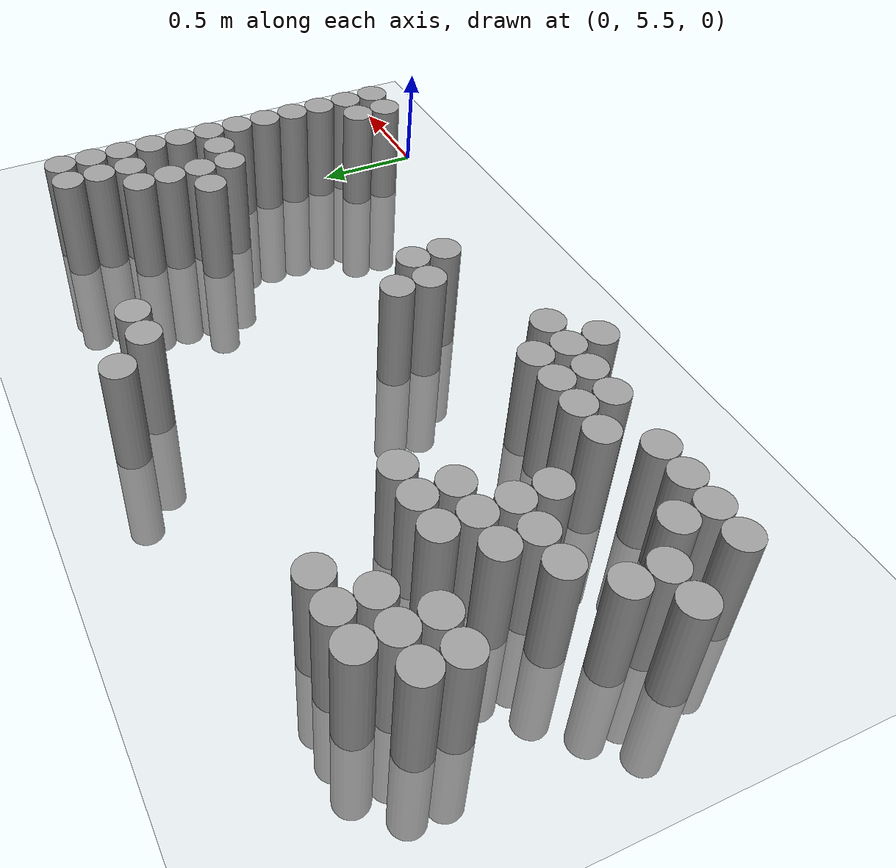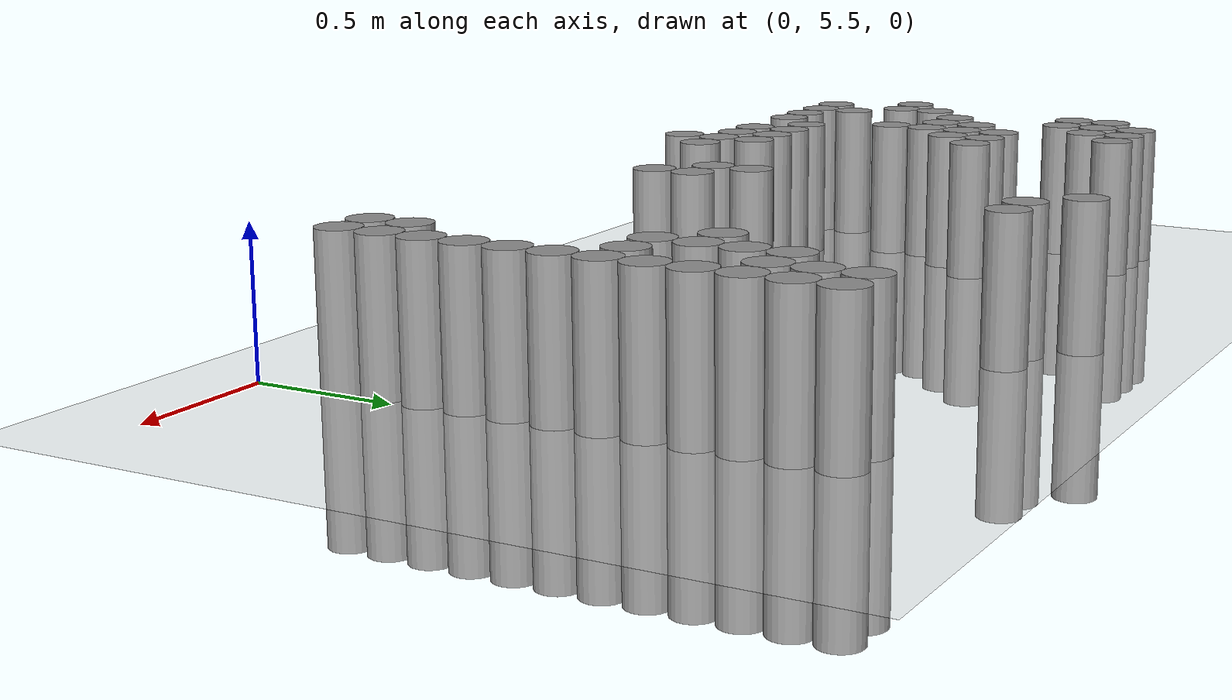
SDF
<sdf version="1.6">
 <world name="default">
  <model name="ground_plane">
   <static>1</static>
   <link name="link">
    <collision name="collision">
     <geometry><plane><normal>0 0 1</normal><size>100 100</size></plane></geometry>
     <surface><friction><ode><mu>100</mu><mu2>50</mu2></ode></friction></surface>
    </collision>
    <visual name="visual">
     <cast_shadows>0</cast_shadows>
     <geometry><plane><normal>0 0 1</normal><size>100 100</size></plane></geometry>
     <material>
      <script><uri>file://media/materials/scripts/gazebo.material</uri><name>Gazebo/Grey</name></script>
     </material>
    </visual>
   </link>
  </model>
  <model name="unit_cylinder_182">
   <pose>-3.375000 6.225000 0.000000 0.000000 0.000000 0.000000</pose>
   <link name="link">
    <inertial>
     <mass>1</mass>
     <inertia><ixx>0.145833</ixx><ixy>0</ixy><ixz>0</ixz><iyy>0.145833</iyy><iyz>0</iyz><izz>0.125</izz></inertia>
    </inertial>
    <collision name="collision">
     <geometry><cylinder><radius>0.075000</radius><length>1</length></cylinder></geometry>
    </collision>
    <visual name="visual">
     <geometry><cylinder><radius>0.075000</radius><length>1</length></cylinder></geometry>
     <material>
      <script><name>Gazebo/Grey</name><uri>file://media/materials/scripts/gazebo.material</uri></script>
     </material>
    </visual>
   </link>
  </model>
  <model name="unit_cylinder_190">
   <pose>-3.225000 5.925000 0.000000 0.000000 0.000000 0.000000</pose>
   <link name="link">
    <inertial>
     <mass>1</mass>
     <inertia><ixx>0.145833</ixx><ixy>0</ixy><ixz>0</ixz><iyy>0.145833</iyy><iyz>0</iyz><izz>0.125</izz></inertia>
    </inertial>
    <collision name="collision">
     <geometry><cylinder><radius>0.075000</radius><length>1</length></cylinder></geometry>
    </collision>
    <visual name="visual">
     <geometry><cylinder><radius>0.075000</radius><length>1</length></cylinder></geometry>
     <material>
      <script><name>Gazebo/Grey</name><uri>file://media/materials/scripts/gazebo.material</uri></script>
     </material>
    </visual>
   </link>
  </model>
  <model name="unit_cylinder_191">
   <pose>-3.225000 6.225000 0.000000 0.000000 0.000000 0.000000</pose>
   <link name="link">
    <inertial>
     <mass>1</mass>
     <inertia><ixx>0.145833</ixx><ixy>0</ixy><ixz>0</ixz><iyy>0.145833</iyy><iyz>0</iyz><izz>0.125</izz></inertia>
    </inertial>
    <collision name="collision">
     <geometry><cylinder><radius>0.075000</radius><length>1</length></cylinder></geometry>
    </collision>
    <visual name="visual">
     <geometry><cylinder><radius>0.075000</radius><length>1</length></cylinder></geometry>
     <material>
      <script><name>Gazebo/Grey</name><uri>file://media/materials/scripts/gazebo.material</uri></script>
     </material>
    </visual>
   </link>
  </model>
  <model name="unit_cylinder_192">
   <pose>-3.225000 6.375000 0.000000 0.000000 0.000000 0.000000</pose>
   <link name="link">
    <inertial>
     <mass>1</mass>
     <inertia><ixx>0.145833</ixx><ixy>0</ixy><ixz>0</ixz><iyy>0.145833</iyy><iyz>0</iyz><izz>0.125</izz></inertia>
    </inertial>
    <collision name="collision">
     <geometry><cylinder><radius>0.075000</radius><length>1</length></cylinder></geometry>
    </collision>
    <visual name="visual">
     <geometry><cylinder><radius>0.075000</radius><length>1</length></cylinder></geometry>
     <material>
      <script><name>Gazebo/Grey</name><uri>file://media/materials/scripts/gazebo.material</uri></script>
     </material>
    </visual>
   </link>
  </model>
  <model name="unit_cylinder_193">
   <pose>-3.225000 6.975000 0.000000 0.000000 0.000000 0.000000</pose>
   <link name="link">
    <inertial>
     <mass>1</mass>
     <inertia><ixx>0.145833</ixx><ixy>0</ixy><ixz>0</ixz><iyy>0.145833</iyy><iyz>0</iyz><izz>0.125</izz></inertia>
    </inertial>
    <collision name="collision">
     <geometry><cylinder><radius>0.075000</radius><length>1</length></cylinder></geometry>
    </collision>
    <visual name="visual">
     <geometry><cylinder><radius>0.075000</radius><length>1</length></cylinder></geometry>
     <material>
      <script><name>Gazebo/Grey</name><uri>file://media/materials/scripts/gazebo.material</uri></script>
     </material>
    </visual>
   </link>
  </model>
  <model name="unit_cylinder_194">
   <pose>-3.225000 7.125000 0.000000 0.000000 0.000000 0.000000</pose>
   <link name="link">
    <inertial>
     <mass>1</mass>
     <inertia><ixx>0.145833</ixx><ixy>0</ixy><ixz>0</ixz><iyy>0.145833</iyy><iyz>0</iyz><izz>0.125</izz></inertia>
    </inertial>
    <collision name="collision">
     <geometry><cylinder><radius>0.075000</radius><length>1</length></cylinder></geometry>
    </collision>
    <visual name="visual">
     <geometry><cylinder><radius>0.075000</radius><length>1</length></cylinder></geometry>
     <material>
      <script><name>Gazebo/Grey</name><uri>file://media/materials/scripts/gazebo.material</uri></script>
     </material>
    </visual>
   </link>
  </model>
  <model name="unit_cylinder_203">
   <pose>-3.075000 5.925000 0.000000 0.000000 0.000000 0.000000</pose>
   <link name="link">
    <inertial>
     <mass>1</mass>
     <inertia><ixx>0.145833</ixx><ixy>0</ixy><ixz>0</ixz><iyy>0.145833</iyy><iyz>0</iyz><izz>0.125</izz></inertia>
    </inertial>
    <collision name="collision">
     <geometry><cylinder><radius>0.075000</radius><length>1</length></cylinder></geometry>
    </collision>
    <visual name="visual">
     <geometry><cylinder><radius>0.075000</radius><length>1</length></cylinder></geometry>
     <material>
      <script><name>Gazebo/Grey</name><uri>file://media/materials/scripts/gazebo.material</uri></script>
     </material>
    </visual>
   </link>
  </model>
  <model name="unit_cylinder_204">
   <pose>-3.075000 6.075000 0.000000 0.000000 0.000000 0.000000</pose>
   <link name="link">
    <inertial>
     <mass>1</mass>
     <inertia><ixx>0.145833</ixx><ixy>0</ixy><ixz>0</ixz><iyy>0.145833</iyy><iyz>0</iyz><izz>0.125</izz></inertia>
    </inertial>
    <collision name="collision">
     <geometry><cylinder><radius>0.075000</radius><length>1</length></cylinder></geometry>
    </collision>
    <visual name="visual">
     <geometry><cylinder><radius>0.075000</radius><length>1</length></cylinder></geometry>
     <material>
      <script><name>Gazebo/Grey</name><uri>file://media/materials/scripts/gazebo.material</uri></script>
     </material>
    </visual>
   </link>
  </model>
  <model name="unit_cylinder_205">
   <pose>-3.075000 6.525000 0.000000 0.000000 0.000000 0.000000</pose>
   <link name="link">
    <inertial>
     <mass>1</mass>
     <inertia><ixx>0.145833</ixx><ixy>0</ixy><ixz>0</ixz><iyy>0.145833</iyy><iyz>0</iyz><izz>0.125</izz></inertia>
    </inertial>
    <collision name="collision">
     <geometry><cylinder><radius>0.075000</radius><length>1</length></cylinder></geometry>
    </collision>
    <visual name="visual">
     <geometry><cylinder><radius>0.075000</radius><length>1</length></cylinder></geometry>
     <material>
      <script><name>Gazebo/Grey</name><uri>file://media/materials/scripts/gazebo.material</uri></script>
     </material>
    </visual>
   </link>
  </model>
  <model name="unit_cylinder_206">
   <pose>-3.075000 6.975000 0.000000 0.000000 0.000000 0.000000</pose>
   <link name="link">
    <inertial>
     <mass>1</mass>
     <inertia><ixx>0.145833</ixx><ixy>0</ixy><ixz>0</ixz><iyy>0.145833</iyy><iyz>0</iyz><izz>0.125</izz></inertia>
    </inertial>
    <collision name="collision">
     <geometry><cylinder><radius>0.075000</radius><length>1</length></cylinder></geometry>
    </collision>
    <visual name="visual">
     <geometry><cylinder><radius>0.075000</radius><length>1</length></cylinder></geometry>
     <material>
      <script><name>Gazebo/Grey</name><uri>file://media/materials/scripts/gazebo.material</uri></script>
     </material>
    </visual>
   </link>
  </model>
  <model name="unit_cylinder_207">
   <pose>-3.075000 7.125000 0.000000 0.000000 0.000000 0.000000</pose>
   <link name="link">
    <inertial>
     <mass>1</mass>
     <inertia><ixx>0.145833</ixx><ixy>0</ixy><ixz>0</ixz><iyy>0.145833</iyy><iyz>0</iyz><izz>0.125</izz></inertia>
    </inertial>
    <collision name="collision">
     <geometry><cylinder><radius>0.075000</radius><length>1</length></cylinder></geometry>
    </collision>
    <visual name="visual">
     <geometry><cylinder><radius>0.075000</radius><length>1</length></cylinder></geometry>
     <material>
      <script><name>Gazebo/Grey</name><uri>file://media/materials/scripts/gazebo.material</uri></script>
     </material>
    </visual>
   </link>
  </model>
  <model name="unit_cylinder_208">
   <pose>-3.075000 7.275000 0.000000 0.000000 0.000000 0.000000</pose>
   <link name="link">
    <inertial>
     <mass>1</mass>
     <inertia><ixx>0.145833</ixx><ixy>0</ixy><ixz>0</ixz><iyy>0.145833</iyy><iyz>0</iyz><izz>0.125</izz></inertia>
    </inertial>
    <collision name="collision">
     <geometry><cylinder><radius>0.075000</radius><length>1</length></cylinder></geometry>
    </collision>
    <visual name="visual">
     <geometry><cylinder><radius>0.075000</radius><length>1</length></cylinder></geometry>
     <material>
      <script><name>Gazebo/Grey</name><uri>file://media/materials/scripts/gazebo.material</uri></script>
     </material>
    </visual>
   </link>
  </model>
  <model name="unit_cylinder_212">
   <pose>-2.925000 5.925000 0.000000 0.000000 0.000000 0.000000</pose>
   <link name="link">
    <inertial>
     <mass>1</mass>
     <inertia><ixx>0.145833</ixx><ixy>0</ixy><ixz>0</ixz><iyy>0.145833</iyy><iyz>0</iyz><izz>0.125</izz></inertia>
    </inertial>
    <collision name="collision">
     <geometry><cylinder><radius>0.075000</radius><length>1</length></cylinder></geometry>
    </collision>
    <visual name="visual">
     <geometry><cylinder><radius>0.075000</radius><length>1</length></cylinder></geometry>
     <material>
      <script><name>Gazebo/Grey</name><uri>file://media/materials/scripts/gazebo.material</uri></script>
     </material>
    </visual>
   </link>
  </model>
  <model name="unit_cylinder_213">
   <pose>-2.925000 6.525000 0.000000 0.000000 0.000000 0.000000</pose>
   <link name="link">
    <inertial>
     <mass>1</mass>
     <inertia><ixx>0.145833</ixx><ixy>0</ixy><ixz>0</ixz><iyy>0.145833</iyy><iyz>0</iyz><izz>0.125</izz></inertia>
    </inertial>
    <collision name="collision">
     <geometry><cylinder><radius>0.075000</radius><length>1</length></cylinder></geometry>
    </collision>
    <visual name="visual">
     <geometry><cylinder><radius>0.075000</radius><length>1</length></cylinder></geometry>
     <material>
      <script><name>Gazebo/Grey</name><uri>file://media/materials/scripts/gazebo.material</uri></script>
     </material>
    </visual>
   </link>
  </model>
  <model name="unit_cylinder_214">
   <pose>-2.925000 6.675000 0.000000 0.000000 0.000000 0.000000</pose>
   <link name="link">
    <inertial>
     <mass>1</mass>
     <inertia><ixx>0.145833</ixx><ixy>0</ixy><ixz>0</ixz><iyy>0.145833</iyy><iyz>0</iyz><izz>0.125</izz></inertia>
    </inertial>
    <collision name="collision">
     <geometry><cylinder><radius>0.075000</radius><length>1</length></cylinder></geometry>
    </collision>
    <visual name="visual">
     <geometry><cylinder><radius>0.075000</radius><length>1</length></cylinder></geometry>
     <material>
      <script><name>Gazebo/Grey</name><uri>file://media/materials/scripts/gazebo.material</uri></script>
     </material>
    </visual>
   </link>
  </model>
  <model name="unit_cylinder_215">
   <pose>-2.925000 7.125000 0.000000 0.000000 0.000000 0.000000</pose>
   <link name="link">
    <inertial>
     <mass>1</mass>
     <inertia><ixx>0.145833</ixx><ixy>0</ixy><ixz>0</ixz><iyy>0.145833</iyy><iyz>0</iyz><izz>0.125</izz></inertia>
    </inertial>
    <collision name="collision">
     <geometry><cylinder><radius>0.075000</radius><length>1</length></cylinder></geometry>
    </collision>
    <visual name="visual">
     <geometry><cylinder><radius>0.075000</radius><length>1</length></cylinder></geometry>
     <material>
      <script><name>Gazebo/Grey</name><uri>file://media/materials/scripts/gazebo.material</uri></script>
     </material>
    </visual>
   </link>
  </model>
  <model name="unit_cylinder_216">
   <pose>-2.925000 7.275000 0.000000 0.000000 0.000000 0.000000</pose>
   <link name="link">
    <inertial>
     <mass>1</mass>
     <inertia><ixx>0.145833</ixx><ixy>0</ixy><ixz>0</ixz><iyy>0.145833</iyy><iyz>0</iyz><izz>0.125</izz></inertia>
    </inertial>
    <collision name="collision">
     <geometry><cylinder><radius>0.075000</radius><length>1</length></cylinder></geometry>
    </collision>
    <visual name="visual">
     <geometry><cylinder><radius>0.075000</radius><length>1</length></cylinder></geometry>
     <material>
      <script><name>Gazebo/Grey</name><uri>file://media/materials/scripts/gazebo.material</uri></script>
     </material>
    </visual>
   </link>
  </model>
  <model name="unit_cylinder_218">
   <pose>-2.775000 5.925000 0.000000 0.000000 0.000000 0.000000</pose>
   <link name="link">
    <inertial>
     <mass>1</mass>
     <inertia><ixx>0.145833</ixx><ixy>0</ixy><ixz>0</ixz><iyy>0.145833</iyy><iyz>0</iyz><izz>0.125</izz></inertia>
    </inertial>
    <collision name="collision">
     <geometry><cylinder><radius>0.075000</radius><length>1</length></cylinder></geometry>
    </collision>
    <visual name="visual">
     <geometry><cylinder><radius>0.075000</radius><length>1</length></cylinder></geometry>
     <material>
      <script><name>Gazebo/Grey</name><uri>file://media/materials/scripts/gazebo.material</uri></script>
     </material>
    </visual>
   </link>
  </model>
  <model name="unit_cylinder_219">
   <pose>-2.775000 6.375000 0.000000 0.000000 0.000000 0.000000</pose>
   <link name="link">
    <inertial>
     <mass>1</mass>
     <inertia><ixx>0.145833</ixx><ixy>0</ixy><ixz>0</ixz><iyy>0.145833</iyy><iyz>0</iyz><izz>0.125</izz></inertia>
    </inertial>
    <collision name="collision">
     <geometry><cylinder><radius>0.075000</radius><length>1</length></cylinder></geometry>
    </collision>
    <visual name="visual">
     <geometry><cylinder><radius>0.075000</radius><length>1</length></cylinder></geometry>
     <material>
      <script><name>Gazebo/Grey</name><uri>file://media/materials/scripts/gazebo.material</uri></script>
     </material>
    </visual>
   </link>
  </model>
  <model name="unit_cylinder_220">
   <pose>-2.775000 6.525000 0.000000 0.000000 0.000000 0.000000</pose>
   <link name="link">
    <inertial>
     <mass>1</mass>
     <inertia><ixx>0.145833</ixx><ixy>0</ixy><ixz>0</ixz><iyy>0.145833</iyy><iyz>0</iyz><izz>0.125</izz></inertia>
    </inertial>
    <collision name="collision">
     <geometry><cylinder><radius>0.075000</radius><length>1</length></cylinder></geometry>
    </collision>
    <visual name="visual">
     <geometry><cylinder><radius>0.075000</radius><length>1</length></cylinder></geometry>
     <material>
      <script><name>Gazebo/Grey</name><uri>file://media/materials/scripts/gazebo.material</uri></script>
     </material>
    </visual>
   </link>
  </model>
  <model name="unit_cylinder_221">
   <pose>-2.775000 6.675000 0.000000 0.000000 0.000000 0.000000</pose>
   <link name="link">
    <inertial>
     <mass>1</mass>
     <inertia><ixx>0.145833</ixx><ixy>0</ixy><ixz>0</ixz><iyy>0.145833</iyy><iyz>0</iyz><izz>0.125</izz></inertia>
    </inertial>
    <collision name="collision">
     <geometry><cylinder><radius>0.075000</radius><length>1</length></cylinder></geometry>
    </collision>
    <visual name="visual">
     <geometry><cylinder><radius>0.075000</radius><length>1</length></cylinder></geometry>
     <material>
      <script><name>Gazebo/Grey</name><uri>file://media/materials/scripts/gazebo.material</uri></script>
     </material>
    </visual>
   </link>
  </model>
  <model name="unit_cylinder_222">
   <pose>-2.775000 6.825000 0.000000 0.000000 0.000000 0.000000</pose>
   <link name="link">
    <inertial>
     <mass>1</mass>
     <inertia><ixx>0.145833</ixx><ixy>0</ixy><ixz>0</ixz><iyy>0.145833</iyy><iyz>0</iyz><izz>0.125</izz></inertia>
    </inertial>
    <collision name="collision">
     <geometry><cylinder><radius>0.075000</radius><length>1</length></cylinder></geometry>
    </collision>
    <visual name="visual">
     <geometry><cylinder><radius>0.075000</radius><length>1</length></cylinder></geometry>
     <material>
      <script><name>Gazebo/Grey</name><uri>file://media/materials/scripts/gazebo.material</uri></script>
     </material>
    </visual>
   </link>
  </model>
  <model name="unit_cylinder_223">
   <pose>-2.775000 7.275000 0.000000 0.000000 0.000000 0.000000</pose>
   <link name="link">
    <inertial>
     <mass>1</mass>
     <inertia><ixx>0.145833</ixx><ixy>0</ixy><ixz>0</ixz><iyy>0.145833</iyy><iyz>0</iyz><izz>0.125</izz></inertia>
    </inertial>
    <collision name="collision">
     <geometry><cylinder><radius>0.075000</radius><length>1</length></cylinder></geometry>
    </collision>
    <visual name="visual">
     <geometry><cylinder><radius>0.075000</radius><length>1</length></cylinder></geometry>
     <material>
      <script><name>Gazebo/Grey</name><uri>file://media/materials/scripts/gazebo.material</uri></script>
     </material>
    </visual>
   </link>
  </model>
  <model name="unit_cylinder_225">
   <pose>-2.625000 6.075000 0.000000 0.000000 0.000000 0.000000</pose>
   <link name="link">
    <inertial>
     <mass>1</mass>
     <inertia><ixx>0.145833</ixx><ixy>0</ixy><ixz>0</ixz><iyy>0.145833</iyy><iyz>0</iyz><izz>0.125</izz></inertia>
    </inertial>
    <collision name="collision">
     <geometry><cylinder><radius>0.075000</radius><length>1</length></cylinder></geometry>
    </collision>
    <visual name="visual">
     <geometry><cylinder><radius>0.075000</radius><length>1</length></cylinder></geometry>
     <material>
      <script><name>Gazebo/Grey</name><uri>file://media/materials/scripts/gazebo.material</uri></script>
     </material>
    </visual>
   </link>
  </model>
  <model name="unit_cylinder_226">
   <pose>-2.625000 6.675000 0.000000 0.000000 0.000000 0.000000</pose>
   <link name="link">
    <inertial>
     <mass>1</mass>
     <inertia><ixx>0.145833</ixx><ixy>0</ixy><ixz>0</ixz><iyy>0.145833</iyy><iyz>0</iyz><izz>0.125</izz></inertia>
    </inertial>
    <collision name="collision">
     <geometry><cylinder><radius>0.075000</radius><length>1</length></cylinder></geometry>
    </collision>
    <visual name="visual">
     <geometry><cylinder><radius>0.075000</radius><length>1</length></cylinder></geometry>
     <material>
      <script><name>Gazebo/Grey</name><uri>file://media/materials/scripts/gazebo.material</uri></script>
     </material>
    </visual>
   </link>
  </model>
  <model name="unit_cylinder_227">
   <pose>-2.625000 6.825000 0.000000 0.000000 0.000000 0.000000</pose>
   <link name="link">
    <inertial>
     <mass>1</mass>
     <inertia><ixx>0.145833</ixx><ixy>0</ixy><ixz>0</ixz><iyy>0.145833</iyy><iyz>0</iyz><izz>0.125</izz></inertia>
    </inertial>
    <collision name="collision">
     <geometry><cylinder><radius>0.075000</radius><length>1</length></cylinder></geometry>
    </collision>
    <visual name="visual">
     <geometry><cylinder><radius>0.075000</radius><length>1</length></cylinder></geometry>
     <material>
      <script><name>Gazebo/Grey</name><uri>file://media/materials/scripts/gazebo.material</uri></script>
     </material>
    </visual>
   </link>
  </model>
  <model name="unit_cylinder_228">
   <pose>-2.475000 5.925000 0.000000 0.000000 0.000000 0.000000</pose>
   <link name="link">
    <inertial>
     <mass>1</mass>
     <inertia><ixx>0.145833</ixx><ixy>0</ixy><ixz>0</ixz><iyy>0.145833</iyy><iyz>0</iyz><izz>0.125</izz></inertia>
    </inertial>
    <collision name="collision">
     <geometry><cylinder><radius>0.075000</radius><length>1</length></cylinder></geometry>
    </collision>
    <visual name="visual">
     <geometry><cylinder><radius>0.075000</radius><length>1</length></cylinder></geometry>
     <material>
      <script><name>Gazebo/Grey</name><uri>file://media/materials/scripts/gazebo.material</uri></script>
     </material>
    </visual>
   </link>
  </model>
  <model name="unit_cylinder_229">
   <pose>-2.475000 6.075000 0.000000 0.000000 0.000000 0.000000</pose>
   <link name="link">
    <inertial>
     <mass>1</mass>
     <inertia><ixx>0.145833</ixx><ixy>0</ixy><ixz>0</ixz><iyy>0.145833</iyy><iyz>0</iyz><izz>0.125</izz></inertia>
    </inertial>
    <collision name="collision">
     <geometry><cylinder><radius>0.075000</radius><length>1</length></cylinder></geometry>
    </collision>
    <visual name="visual">
     <geometry><cylinder><radius>0.075000</radius><length>1</length></cylinder></geometry>
     <material>
      <script><name>Gazebo/Grey</name><uri>file://media/materials/scripts/gazebo.material</uri></script>
     </material>
    </visual>
   </link>
  </model>
  <model name="unit_cylinder_230">
   <pose>-2.475000 6.825000 0.000000 0.000000 0.000000 0.000000</pose>
   <link name="link">
    <inertial>
     <mass>1</mass>
     <inertia><ixx>0.145833</ixx><ixy>0</ixy><ixz>0</ixz><iyy>0.145833</iyy><iyz>0</iyz><izz>0.125</izz></inertia>
    </inertial>
    <collision name="collision">
     <geometry><cylinder><radius>0.075000</radius><length>1</length></cylinder></geometry>
    </collision>
    <visual name="visual">
     <geometry><cylinder><radius>0.075000</radius><length>1</length></cylinder></geometry>
     <material>
      <script><name>Gazebo/Grey</name><uri>file://media/materials/scripts/gazebo.material</uri></script>
     </material>
    </visual>
   </link>
  </model>
  <model name="unit_cylinder_233">
   <pose>-2.325000 5.925000 0.000000 0.000000 0.000000 0.000000</pose>
   <link name="link">
    <inertial>
     <mass>1</mass>
     <inertia><ixx>0.145833</ixx><ixy>0</ixy><ixz>0</ixz><iyy>0.145833</iyy><iyz>0</iyz><izz>0.125</izz></inertia>
    </inertial>
    <collision name="collision">
     <geometry><cylinder><radius>0.075000</radius><length>1</length></cylinder></geometry>
    </collision>
    <visual name="visual">
     <geometry><cylinder><radius>0.075000</radius><length>1</length></cylinder></geometry>
     <material>
      <script><name>Gazebo/Grey</name><uri>file://media/materials/scripts/gazebo.material</uri></script>
     </material>
    </visual>
   </link>
  </model>
  <model name="unit_cylinder_234">
   <pose>-2.325000 6.075000 0.000000 0.000000 0.000000 0.000000</pose>
   <link name="link">
    <inertial>
     <mass>1</mass>
     <inertia><ixx>0.145833</ixx><ixy>0</ixy><ixz>0</ixz><iyy>0.145833</iyy><iyz>0</iyz><izz>0.125</izz></inertia>
    </inertial>
    <collision name="collision">
     <geometry><cylinder><radius>0.075000</radius><length>1</length></cylinder></geometry>
    </collision>
    <visual name="visual">
     <geometry><cylinder><radius>0.075000</radius><length>1</length></cylinder></geometry>
     <material>
      <script><name>Gazebo/Grey</name><uri>file://media/materials/scripts/gazebo.material</uri></script>
     </material>
    </visual>
   </link>
  </model>
  <model name="unit_cylinder_238">
   <pose>-2.175000 5.775000 0.000000 0.000000 0.000000 0.000000</pose>
   <link name="link">
    <inertial>
     <mass>1</mass>
     <inertia><ixx>0.145833</ixx><ixy>0</ixy><ixz>0</ixz><iyy>0.145833</iyy><iyz>0</iyz><izz>0.125</izz></inertia>
    </inertial>
    <collision name="collision">
     <geometry><cylinder><radius>0.075000</radius><length>1</length></cylinder></geometry>
    </collision>
    <visual name="visual">
     <geometry><cylinder><radius>0.075000</radius><length>1</length></cylinder></geometry>
     <material>
      <script><name>Gazebo/Grey</name><uri>file://media/materials/scripts/gazebo.material</uri></script>
     </material>
    </visual>
   </link>
  </model>
  <model name="unit_cylinder_239">
   <pose>-2.175000 5.925000 0.000000 0.000000 0.000000 0.000000</pose>
   <link name="link">
    <inertial>
     <mass>1</mass>
     <inertia><ixx>0.145833</ixx><ixy>0</ixy><ixz>0</ixz><iyy>0.145833</iyy><iyz>0</iyz><izz>0.125</izz></inertia>
    </inertial>
    <collision name="collision">
     <geometry><cylinder><radius>0.075000</radius><length>1</length></cylinder></geometry>
    </collision>
    <visual name="visual">
     <geometry><cylinder><radius>0.075000</radius><length>1</length></cylinder></geometry>
     <material>
      <script><name>Gazebo/Grey</name><uri>file://media/materials/scripts/gazebo.material</uri></script>
     </material>
    </visual>
   </link>
  </model>
  <model name="unit_cylinder_240">
   <pose>-2.175000 6.075000 0.000000 0.000000 0.000000 0.000000</pose>
   <link name="link">
    <inertial>
     <mass>1</mass>
     <inertia><ixx>0.145833</ixx><ixy>0</ixy><ixz>0</ixz><iyy>0.145833</iyy><iyz>0</iyz><izz>0.125</izz></inertia>
    </inertial>
    <collision name="collision">
     <geometry><cylinder><radius>0.075000</radius><length>1</length></cylinder></geometry>
    </collision>
    <visual name="visual">
     <geometry><cylinder><radius>0.075000</radius><length>1</length></cylinder></geometry>
     <material>
      <script><name>Gazebo/Grey</name><uri>file://media/materials/scripts/gazebo.material</uri></script>
     </material>
    </visual>
   </link>
  </model>
  <model name="unit_cylinder_243">
   <pose>-2.025000 5.925000 0.000000 0.000000 0.000000 0.000000</pose>
   <link name="link">
    <inertial>
     <mass>1</mass>
     <inertia><ixx>0.145833</ixx><ixy>0</ixy><ixz>0</ixz><iyy>0.145833</iyy><iyz>0</iyz><izz>0.125</izz></inertia>
    </inertial>
    <collision name="collision">
     <geometry><cylinder><radius>0.075000</radius><length>1</length></cylinder></geometry>
    </collision>
    <visual name="visual">
     <geometry><cylinder><radius>0.075000</radius><length>1</length></cylinder></geometry>
     <material>
      <script><name>Gazebo/Grey</name><uri>file://media/materials/scripts/gazebo.material</uri></script>
     </material>
    </visual>
   </link>
  </model>
  <model name="unit_cylinder_245">
   <pose>-1.575000 6.225000 0.000000 0.000000 0.000000 0.000000</pose>
   <link name="link">
    <inertial>
     <mass>1</mass>
     <inertia><ixx>0.145833</ixx><ixy>0</ixy><ixz>0</ixz><iyy>0.145833</iyy><iyz>0</iyz><izz>0.125</izz></inertia>
    </inertial>
    <collision name="collision">
     <geometry><cylinder><radius>0.075000</radius><length>1</length></cylinder></geometry>
    </collision>
    <visual name="visual">
     <geometry><cylinder><radius>0.075000</radius><length>1</length></cylinder></geometry>
     <material>
      <script><name>Gazebo/Grey</name><uri>file://media/materials/scripts/gazebo.material</uri></script>
     </material>
    </visual>
   </link>
  </model>
  <model name="unit_cylinder_246">
   <pose>-1.575000 6.375000 0.000000 0.000000 0.000000 0.000000</pose>
   <link name="link">
    <inertial>
     <mass>1</mass>
     <inertia><ixx>0.145833</ixx><ixy>0</ixy><ixz>0</ixz><iyy>0.145833</iyy><iyz>0</iyz><izz>0.125</izz></inertia>
    </inertial>
    <collision name="collision">
     <geometry><cylinder><radius>0.075000</radius><length>1</length></cylinder></geometry>
    </collision>
    <visual name="visual">
     <geometry><cylinder><radius>0.075000</radius><length>1</length></cylinder></geometry>
     <material>
      <script><name>Gazebo/Grey</name><uri>file://media/materials/scripts/gazebo.material</uri></script>
     </material>
    </visual>
   </link>
  </model>
  <model name="unit_cylinder_247">
   <pose>-1.575000 7.575000 0.000000 0.000000 0.000000 0.000000</pose>
   <link name="link">
    <inertial>
     <mass>1</mass>
     <inertia><ixx>0.145833</ixx><ixy>0</ixy><ixz>0</ixz><iyy>0.145833</iyy><iyz>0</iyz><izz>0.125</izz></inertia>
    </inertial>
    <collision name="collision">
     <geometry><cylinder><radius>0.075000</radius><length>1</length></cylinder></geometry>
    </collision>
    <visual name="visual">
     <geometry><cylinder><radius>0.075000</radius><length>1</length></cylinder></geometry>
     <material>
      <script><name>Gazebo/Grey</name><uri>file://media/materials/scripts/gazebo.material</uri></script>
     </material>
    </visual>
   </link>
  </model>
  <model name="unit_cylinder_248">
   <pose>-1.425000 6.075000 0.000000 0.000000 0.000000 0.000000</pose>
   <link name="link">
    <inertial>
     <mass>1</mass>
     <inertia><ixx>0.145833</ixx><ixy>0</ixy><ixz>0</ixz><iyy>0.145833</iyy><iyz>0</iyz><izz>0.125</izz></inertia>
    </inertial>
    <collision name="collision">
     <geometry><cylinder><radius>0.075000</radius><length>1</length></cylinder></geometry>
    </collision>
    <visual name="visual">
     <geometry><cylinder><radius>0.075000</radius><length>1</length></cylinder></geometry>
     <material>
      <script><name>Gazebo/Grey</name><uri>file://media/materials/scripts/gazebo.material</uri></script>
     </material>
    </visual>
   </link>
  </model>
  <model name="unit_cylinder_249">
   <pose>-1.425000 6.225000 0.000000 0.000000 0.000000 0.000000</pose>
   <link name="link">
    <inertial>
     <mass>1</mass>
     <inertia><ixx>0.145833</ixx><ixy>0</ixy><ixz>0</ixz><iyy>0.145833</iyy><iyz>0</iyz><izz>0.125</izz></inertia>
    </inertial>
    <collision name="collision">
     <geometry><cylinder><radius>0.075000</radius><length>1</length></cylinder></geometry>
    </collision>
    <visual name="visual">
     <geometry><cylinder><radius>0.075000</radius><length>1</length></cylinder></geometry>
     <material>
      <script><name>Gazebo/Grey</name><uri>file://media/materials/scripts/gazebo.material</uri></script>
     </material>
    </visual>
   </link>
  </model>
  <model name="unit_cylinder_250">
   <pose>-1.425000 7.425000 0.000000 0.000000 0.000000 0.000000</pose>
   <link name="link">
    <inertial>
     <mass>1</mass>
     <inertia><ixx>0.145833</ixx><ixy>0</ixy><ixz>0</ixz><iyy>0.145833</iyy><iyz>0</iyz><izz>0.125</izz></inertia>
    </inertial>
    <collision name="collision">
     <geometry><cylinder><radius>0.075000</radius><length>1</length></cylinder></geometry>
    </collision>
    <visual name="visual">
     <geometry><cylinder><radius>0.075000</radius><length>1</length></cylinder></geometry>
     <material>
      <script><name>Gazebo/Grey</name><uri>file://media/materials/scripts/gazebo.material</uri></script>
     </material>
    </visual>
   </link>
  </model>
  <model name="unit_cylinder_253">
   <pose>-1.275000 7.425000 0.000000 0.000000 0.000000 0.000000</pose>
   <link name="link">
    <inertial>
     <mass>1</mass>
     <inertia><ixx>0.145833</ixx><ixy>0</ixy><ixz>0</ixz><iyy>0.145833</iyy><iyz>0</iyz><izz>0.125</izz></inertia>
    </inertial>
    <collision name="collision">
     <geometry><cylinder><radius>0.075000</radius><length>1</length></cylinder></geometry>
    </collision>
    <visual name="visual">
     <geometry><cylinder><radius>0.075000</radius><length>1</length></cylinder></geometry>
     <material>
      <script><name>Gazebo/Grey</name><uri>file://media/materials/scripts/gazebo.material</uri></script>
     </material>
    </visual>
   </link>
  </model>
  <model name="unit_cylinder_267">
   <pose>-0.525000 6.825000 0.000000 0.000000 0.000000 0.000000</pose>
   <link name="link">
    <inertial>
     <mass>1</mass>
     <inertia><ixx>0.145833</ixx><ixy>0</ixy><ixz>0</ixz><iyy>0.145833</iyy><iyz>0</iyz><izz>0.125</izz></inertia>
    </inertial>
    <collision name="collision">
     <geometry><cylinder><radius>0.075000</radius><length>1</length></cylinder></geometry>
    </collision>
    <visual name="visual">
     <geometry><cylinder><radius>0.075000</radius><length>1</length></cylinder></geometry>
     <material>
      <script><name>Gazebo/Grey</name><uri>file://media/materials/scripts/gazebo.material</uri></script>
     </material>
    </visual>
   </link>
  </model>
  <model name="unit_cylinder_274">
   <pose>-0.375000 6.675000 0.000000 0.000000 0.000000 0.000000</pose>
   <link name="link">
    <inertial>
     <mass>1</mass>
     <inertia><ixx>0.145833</ixx><ixy>0</ixy><ixz>0</ixz><iyy>0.145833</iyy><iyz>0</iyz><izz>0.125</izz></inertia>
    </inertial>
    <collision name="collision">
     <geometry><cylinder><radius>0.075000</radius><length>1</length></cylinder></geometry>
    </collision>
    <visual name="visual">
     <geometry><cylinder><radius>0.075000</radius><length>1</length></cylinder></geometry>
     <material>
      <script><name>Gazebo/Grey</name><uri>file://media/materials/scripts/gazebo.material</uri></script>
     </material>
    </visual>
   </link>
  </model>
  <model name="unit_cylinder_275">
   <pose>-0.375000 6.825000 0.000000 0.000000 0.000000 0.000000</pose>
   <link name="link">
    <inertial>
     <mass>1</mass>
     <inertia><ixx>0.145833</ixx><ixy>0</ixy><ixz>0</ixz><iyy>0.145833</iyy><iyz>0</iyz><izz>0.125</izz></inertia>
    </inertial>
    <collision name="collision">
     <geometry><cylinder><radius>0.075000</radius><length>1</length></cylinder></geometry>
    </collision>
    <visual name="visual">
     <geometry><cylinder><radius>0.075000</radius><length>1</length></cylinder></geometry>
     <material>
      <script><name>Gazebo/Grey</name><uri>file://media/materials/scripts/gazebo.material</uri></script>
     </material>
    </visual>
   </link>
  </model>
  <model name="unit_cylinder_276">
   <pose>-0.375000 6.975000 0.000000 0.000000 0.000000 0.000000</pose>
   <link name="link">
    <inertial>
     <mass>1</mass>
     <inertia><ixx>0.145833</ixx><ixy>0</ixy><ixz>0</ixz><iyy>0.145833</iyy><iyz>0</iyz><izz>0.125</izz></inertia>
    </inertial>
    <collision name="collision">
     <geometry><cylinder><radius>0.075000</radius><length>1</length></cylinder></geometry>
    </collision>
    <visual name="visual">
     <geometry><cylinder><radius>0.075000</radius><length>1</length></cylinder></geometry>
     <material>
      <script><name>Gazebo/Grey</name><uri>file://media/materials/scripts/gazebo.material</uri></script>
     </material>
    </visual>
   </link>
  </model>
  <model name="unit_cylinder_277">
   <pose>-0.375000 7.125000 0.000000 0.000000 0.000000 0.000000</pose>
   <link name="link">
    <inertial>
     <mass>1</mass>
     <inertia><ixx>0.145833</ixx><ixy>0</ixy><ixz>0</ixz><iyy>0.145833</iyy><iyz>0</iyz><izz>0.125</izz></inertia>
    </inertial>
    <collision name="collision">
     <geometry><cylinder><radius>0.075000</radius><length>1</length></cylinder></geometry>
    </collision>
    <visual name="visual">
     <geometry><cylinder><radius>0.075000</radius><length>1</length></cylinder></geometry>
     <material>
      <script><name>Gazebo/Grey</name><uri>file://media/materials/scripts/gazebo.material</uri></script>
     </material>
    </visual>
   </link>
  </model>
  <model name="unit_cylinder_284">
   <pose>-0.225000 5.775000 0.000000 0.000000 0.000000 0.000000</pose>
   <link name="link">
    <inertial>
     <mass>1</mass>
     <inertia><ixx>0.145833</ixx><ixy>0</ixy><ixz>0</ixz><iyy>0.145833</iyy><iyz>0</iyz><izz>0.125</izz></inertia>
    </inertial>
    <collision name="collision">
     <geometry><cylinder><radius>0.075000</radius><length>1</length></cylinder></geometry>
    </collision>
    <visual name="visual">
     <geometry><cylinder><radius>0.075000</radius><length>1</length></cylinder></geometry>
     <material>
      <script><name>Gazebo/Grey</name><uri>file://media/materials/scripts/gazebo.material</uri></script>
     </material>
    </visual>
   </link>
  </model>
  <model name="unit_cylinder_285">
   <pose>-0.225000 5.925000 0.000000 0.000000 0.000000 0.000000</pose>
   <link name="link">
    <inertial>
     <mass>1</mass>
     <inertia><ixx>0.145833</ixx><ixy>0</ixy><ixz>0</ixz><iyy>0.145833</iyy><iyz>0</iyz><izz>0.125</izz></inertia>
    </inertial>
    <collision name="collision">
     <geometry><cylinder><radius>0.075000</radius><length>1</length></cylinder></geometry>
    </collision>
    <visual name="visual">
     <geometry><cylinder><radius>0.075000</radius><length>1</length></cylinder></geometry>
     <material>
      <script><name>Gazebo/Grey</name><uri>file://media/materials/scripts/gazebo.material</uri></script>
     </material>
    </visual>
   </link>
  </model>
  <model name="unit_cylinder_286">
   <pose>-0.225000 6.675000 0.000000 0.000000 0.000000 0.000000</pose>
   <link name="link">
    <inertial>
     <mass>1</mass>
     <inertia><ixx>0.145833</ixx><ixy>0</ixy><ixz>0</ixz><iyy>0.145833</iyy><iyz>0</iyz><izz>0.125</izz></inertia>
    </inertial>
    <collision name="collision">
     <geometry><cylinder><radius>0.075000</radius><length>1</length></cylinder></geometry>
    </collision>
    <visual name="visual">
     <geometry><cylinder><radius>0.075000</radius><length>1</length></cylinder></geometry>
     <material>
      <script><name>Gazebo/Grey</name><uri>file://media/materials/scripts/gazebo.material</uri></script>
     </material>
    </visual>
   </link>
  </model>
  <model name="unit_cylinder_287">
   <pose>-0.225000 7.125000 0.000000 0.000000 0.000000 0.000000</pose>
   <link name="link">
    <inertial>
     <mass>1</mass>
     <inertia><ixx>0.145833</ixx><ixy>0</ixy><ixz>0</ixz><iyy>0.145833</iyy><iyz>0</iyz><izz>0.125</izz></inertia>
    </inertial>
    <collision name="collision">
     <geometry><cylinder><radius>0.075000</radius><length>1</length></cylinder></geometry>
    </collision>
    <visual name="visual">
     <geometry><cylinder><radius>0.075000</radius><length>1</length></cylinder></geometry>
     <material>
      <script><name>Gazebo/Grey</name><uri>file://media/materials/scripts/gazebo.material</uri></script>
     </material>
    </visual>
   </link>
  </model>
  <model name="unit_cylinder_288">
   <pose>-0.225000 7.275000 0.000000 0.000000 0.000000 0.000000</pose>
   <link name="link">
    <inertial>
     <mass>1</mass>
     <inertia><ixx>0.145833</ixx><ixy>0</ixy><ixz>0</ixz><iyy>0.145833</iyy><iyz>0</iyz><izz>0.125</izz></inertia>
    </inertial>
    <collision name="collision">
     <geometry><cylinder><radius>0.075000</radius><length>1</length></cylinder></geometry>
    </collision>
    <visual name="visual">
     <geometry><cylinder><radius>0.075000</radius><length>1</length></cylinder></geometry>
     <material>
      <script><name>Gazebo/Grey</name><uri>file://media/materials/scripts/gazebo.material</uri></script>
     </material>
    </visual>
   </link>
  </model>
  <model name="unit_cylinder_289">
   <pose>-0.225000 7.425000 0.000000 0.000000 0.000000 0.000000</pose>
   <link name="link">
    <inertial>
     <mass>1</mass>
     <inertia><ixx>0.145833</ixx><ixy>0</ixy><ixz>0</ixz><iyy>0.145833</iyy><iyz>0</iyz><izz>0.125</izz></inertia>
    </inertial>
    <collision name="collision">
     <geometry><cylinder><radius>0.075000</radius><length>1</length></cylinder></geometry>
    </collision>
    <visual name="visual">
     <geometry><cylinder><radius>0.075000</radius><length>1</length></cylinder></geometry>
     <material>
      <script><name>Gazebo/Grey</name><uri>file://media/materials/scripts/gazebo.material</uri></script>
     </material>
    </visual>
   </link>
  </model>
  <model name="unit_cylinder_303">
   <pose>-0.075000 5.775000 0.000000 0.000000 0.000000 0.000000</pose>
   <link name="link">
    <inertial>
     <mass>1</mass>
     <inertia><ixx>0.145833</ixx><ixy>0</ixy><ixz>0</ixz><iyy>0.145833</iyy><iyz>0</iyz><izz>0.125</izz></inertia>
    </inertial>
    <collision name="collision">
     <geometry><cylinder><radius>0.075000</radius><length>1</length></cylinder></geometry>
    </collision>
    <visual name="visual">
     <geometry><cylinder><radius>0.075000</radius><length>1</length></cylinder></geometry>
     <material>
      <script><name>Gazebo/Grey</name><uri>file://media/materials/scripts/gazebo.material</uri></script>
     </material>
    </visual>
   </link>
  </model>
  <model name="unit_cylinder_304">
   <pose>-0.075000 5.925000 0.000000 0.000000 0.000000 0.000000</pose>
   <link name="link">
    <inertial>
     <mass>1</mass>
     <inertia><ixx>0.145833</ixx><ixy>0</ixy><ixz>0</ixz><iyy>0.145833</iyy><iyz>0</iyz><izz>0.125</izz></inertia>
    </inertial>
    <collision name="collision">
     <geometry><cylinder><radius>0.075000</radius><length>1</length></cylinder></geometry>
    </collision>
    <visual name="visual">
     <geometry><cylinder><radius>0.075000</radius><length>1</length></cylinder></geometry>
     <material>
      <script><name>Gazebo/Grey</name><uri>file://media/materials/scripts/gazebo.material</uri></script>
     </material>
    </visual>
   </link>
  </model>
  <model name="unit_cylinder_305">
   <pose>-0.075000 6.075000 0.000000 0.000000 0.000000 0.000000</pose>
   <link name="link">
    <inertial>
     <mass>1</mass>
     <inertia><ixx>0.145833</ixx><ixy>0</ixy><ixz>0</ixz><iyy>0.145833</iyy><iyz>0</iyz><izz>0.125</izz></inertia>
    </inertial>
    <collision name="collision">
     <geometry><cylinder><radius>0.075000</radius><length>1</length></cylinder></geometry>
    </collision>
    <visual name="visual">
     <geometry><cylinder><radius>0.075000</radius><length>1</length></cylinder></geometry>
     <material>
      <script><name>Gazebo/Grey</name><uri>file://media/materials/scripts/gazebo.material</uri></script>
     </material>
    </visual>
   </link>
  </model>
  <model name="unit_cylinder_306">
   <pose>-0.075000 6.225000 0.000000 0.000000 0.000000 0.000000</pose>
   <link name="link">
    <inertial>
     <mass>1</mass>
     <inertia><ixx>0.145833</ixx><ixy>0</ixy><ixz>0</ixz><iyy>0.145833</iyy><iyz>0</iyz><izz>0.125</izz></inertia>
    </inertial>
    <collision name="collision">
     <geometry><cylinder><radius>0.075000</radius><length>1</length></cylinder></geometry>
    </collision>
    <visual name="visual">
     <geometry><cylinder><radius>0.075000</radius><length>1</length></cylinder></geometry>
     <material>
      <script><name>Gazebo/Grey</name><uri>file://media/materials/scripts/gazebo.material</uri></script>
     </material>
    </visual>
   </link>
  </model>
  <model name="unit_cylinder_307">
   <pose>-0.075000 6.375000 0.000000 0.000000 0.000000 0.000000</pose>
   <link name="link">
    <inertial>
     <mass>1</mass>
     <inertia><ixx>0.145833</ixx><ixy>0</ixy><ixz>0</ixz><iyy>0.145833</iyy><iyz>0</iyz><izz>0.125</izz></inertia>
    </inertial>
    <collision name="collision">
     <geometry><cylinder><radius>0.075000</radius><length>1</length></cylinder></geometry>
    </collision>
    <visual name="visual">
     <geometry><cylinder><radius>0.075000</radius><length>1</length></cylinder></geometry>
     <material>
      <script><name>Gazebo/Grey</name><uri>file://media/materials/scripts/gazebo.material</uri></script>
     </material>
    </visual>
   </link>
  </model>
  <model name="unit_cylinder_308">
   <pose>-0.075000 6.525000 0.000000 0.000000 0.000000 0.000000</pose>
   <link name="link">
    <inertial>
     <mass>1</mass>
     <inertia><ixx>0.145833</ixx><ixy>0</ixy><ixz>0</ixz><iyy>0.145833</iyy><iyz>0</iyz><izz>0.125</izz></inertia>
    </inertial>
    <collision name="collision">
     <geometry><cylinder><radius>0.075000</radius><length>1</length></cylinder></geometry>
    </collision>
    <visual name="visual">
     <geometry><cylinder><radius>0.075000</radius><length>1</length></cylinder></geometry>
     <material>
      <script><name>Gazebo/Grey</name><uri>file://media/materials/scripts/gazebo.material</uri></script>
     </material>
    </visual>
   </link>
  </model>
  <model name="unit_cylinder_309">
   <pose>-0.075000 6.675000 0.000000 0.000000 0.000000 0.000000</pose>
   <link name="link">
    <inertial>
     <mass>1</mass>
     <inertia><ixx>0.145833</ixx><ixy>0</ixy><ixz>0</ixz><iyy>0.145833</iyy><iyz>0</iyz><izz>0.125</izz></inertia>
    </inertial>
    <collision name="collision">
     <geometry><cylinder><radius>0.075000</radius><length>1</length></cylinder></geometry>
    </collision>
    <visual name="visual">
     <geometry><cylinder><radius>0.075000</radius><length>1</length></cylinder></geometry>
     <material>
      <script><name>Gazebo/Grey</name><uri>file://media/materials/scripts/gazebo.material</uri></script>
     </material>
    </visual>
   </link>
  </model>
  <model name="unit_cylinder_310">
   <pose>-0.075000 6.825000 0.000000 0.000000 0.000000 0.000000</pose>
   <link name="link">
    <inertial>
     <mass>1</mass>
     <inertia><ixx>0.145833</ixx><ixy>0</ixy><ixz>0</ixz><iyy>0.145833</iyy><iyz>0</iyz><izz>0.125</izz></inertia>
    </inertial>
    <collision name="collision">
     <geometry><cylinder><radius>0.075000</radius><length>1</length></cylinder></geometry>
    </collision>
    <visual name="visual">
     <geometry><cylinder><radius>0.075000</radius><length>1</length></cylinder></geometry>
     <material>
      <script><name>Gazebo/Grey</name><uri>file://media/materials/scripts/gazebo.material</uri></script>
     </material>
    </visual>
   </link>
  </model>
  <model name="unit_cylinder_311">
   <pose>-0.075000 6.975000 0.000000 0.000000 0.000000 0.000000</pose>
   <link name="link">
    <inertial>
     <mass>1</mass>
     <inertia><ixx>0.145833</ixx><ixy>0</ixy><ixz>0</ixz><iyy>0.145833</iyy><iyz>0</iyz><izz>0.125</izz></inertia>
    </inertial>
    <collision name="collision">
     <geometry><cylinder><radius>0.075000</radius><length>1</length></cylinder></geometry>
    </collision>
    <visual name="visual">
     <geometry><cylinder><radius>0.075000</radius><length>1</length></cylinder></geometry>
     <material>
      <script><name>Gazebo/Grey</name><uri>file://media/materials/scripts/gazebo.material</uri></script>
     </material>
    </visual>
   </link>
  </model>
  <model name="unit_cylinder_312">
   <pose>-0.075000 7.125000 0.000000 0.000000 0.000000 0.000000</pose>
   <link name="link">
    <inertial>
     <mass>1</mass>
     <inertia><ixx>0.145833</ixx><ixy>0</ixy><ixz>0</ixz><iyy>0.145833</iyy><iyz>0</iyz><izz>0.125</izz></inertia>
    </inertial>
    <collision name="collision">
     <geometry><cylinder><radius>0.075000</radius><length>1</length></cylinder></geometry>
    </collision>
    <visual name="visual">
     <geometry><cylinder><radius>0.075000</radius><length>1</length></cylinder></geometry>
     <material>
      <script><name>Gazebo/Grey</name><uri>file://media/materials/scripts/gazebo.material</uri></script>
     </material>
    </visual>
   </link>
  </model>
  <model name="unit_cylinder_313">
   <pose>-0.075000 7.275000 0.000000 0.000000 0.000000 0.000000</pose>
   <link name="link">
    <inertial>
     <mass>1</mass>
     <inertia><ixx>0.145833</ixx><ixy>0</ixy><ixz>0</ixz><iyy>0.145833</iyy><iyz>0</iyz><izz>0.125</izz></inertia>
    </inertial>
    <collision name="collision">
     <geometry><cylinder><radius>0.075000</radius><length>1</length></cylinder></geometry>
    </collision>
    <visual name="visual">
     <geometry><cylinder><radius>0.075000</radius><length>1</length></cylinder></geometry>
     <material>
      <script><name>Gazebo/Grey</name><uri>file://media/materials/scripts/gazebo.material</uri></script>
     </material>
    </visual>
   </link>
  </model>
  <model name="unit_cylinder_314">
   <pose>-0.075000 7.425000 0.000000 0.000000 0.000000 0.000000</pose>
   <link name="link">
    <inertial>
     <mass>1</mass>
     <inertia><ixx>0.145833</ixx><ixy>0</ixy><ixz>0</ixz><iyy>0.145833</iyy><iyz>0</iyz><izz>0.125</izz></inertia>
    </inertial>
    <collision name="collision">
     <geometry><cylinder><radius>0.075000</radius><length>1</length></cylinder></geometry>
    </collision>
    <visual name="visual">
     <geometry><cylinder><radius>0.075000</radius><length>1</length></cylinder></geometry>
     <material>
      <script><name>Gazebo/Grey</name><uri>file://media/materials/scripts/gazebo.material</uri></script>
     </material>
    </visual>
   </link>
  </model>
 </world>
</sdf>
